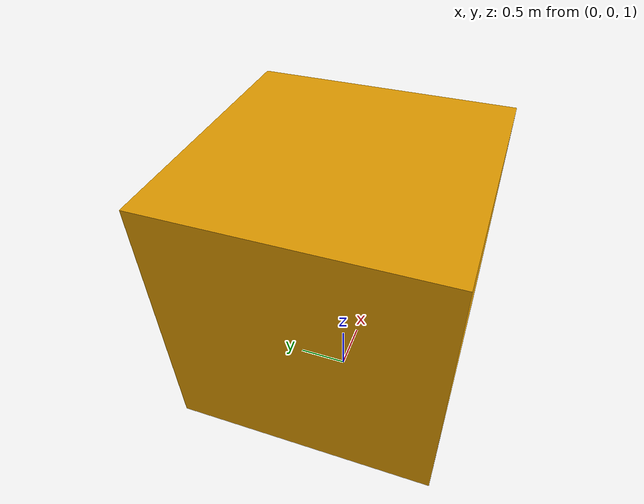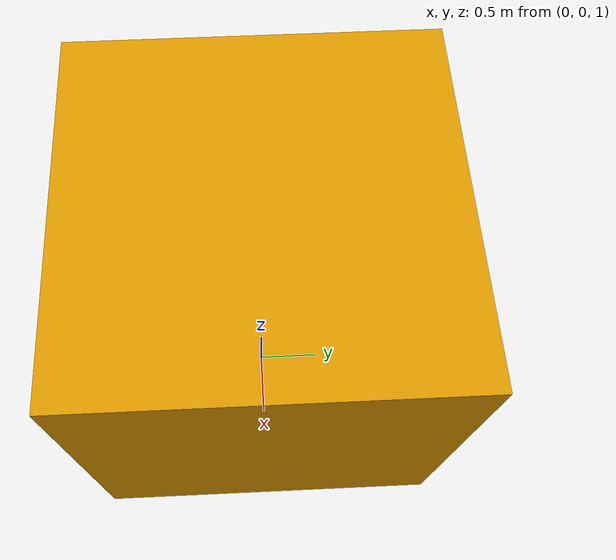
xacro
<?xml version="1.0"?>

<robot xmlns:xacro="http://www.ros.org/wiki/xacro">

  <!-- Define macros -->
  <xacro:macro name="box" params="name size mass">
    <link name="${name}_link">
      <visual>
        <origin xyz="0 0 ${size}" rpy="0 0 0" />
        <geometry>
          <box size="${size} ${size} ${size}" />
        </geometry>
      </visual>
      <collision>
        <origin xyz="0 0 ${size}" />
        <geometry>
          <box size="${size} ${size} ${size}" rpy="0 0 0" />
        </geometry>
      </collision>
      <inertial>
        <mass value="${mass}" />
        <origin xyz="0 0 0" />
        <inertia ixx="${mass*(size*size)/6}" ixy="0" ixz="0" iyy="${mass*(size*size)/6}" iyz="0" izz="${mass*(size*size)/6}" />
      </inertial>
    </link>
  </xacro:macro>

  <!-- Usage of macros -->
  <xacro:box name="box_model" size="2.5" mass="1.0"/>

</robot>
